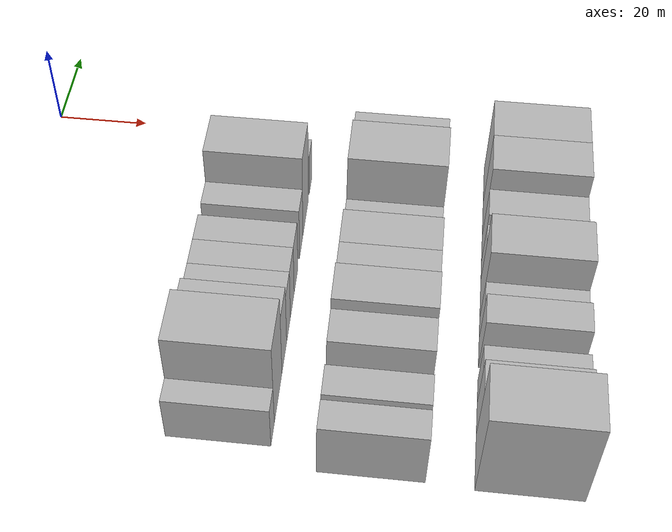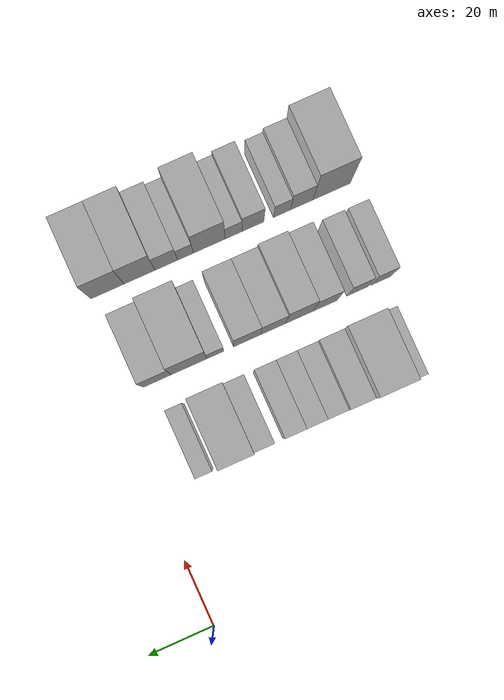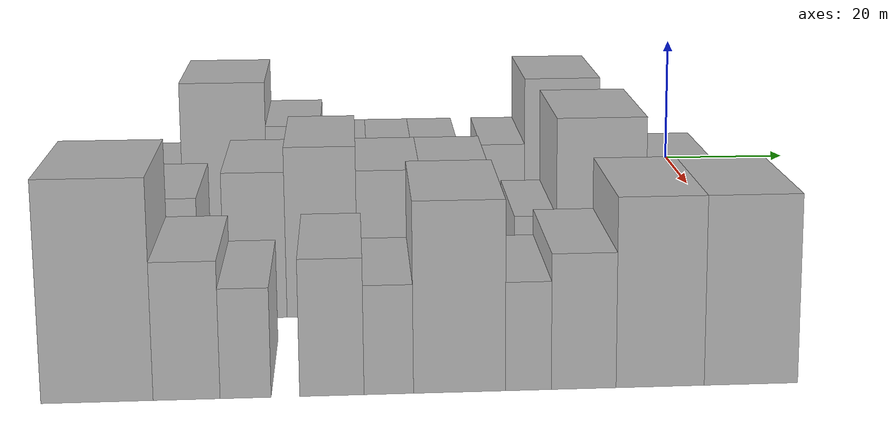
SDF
<sdf version="1.6">
 <world name="default">
  <model name="building_25">
   <static>1</static>
   <pose>50.0000 -78.8587 0 0.000000 0.000000 0.000000</pose>
   <link name="link">
    <pose>0 0 6.00 0 0 0</pose>
    <collision name="collision"><geometry><box><size>20.0000 5.0152 12.0000</size></box></geometry></collision>
    <visual name="visual">
     <cast_shadows>0</cast_shadows>
     <geometry><box><size>20.0000 5.0152 12.0000</size></box></geometry>
     <material>
      <script>
       <uri>model://HANNAS_wall/materials/scripts</uri>
       <uri>model://HANNAS_wall/materials/textures</uri>
       <name>vrc/HANNAS_wall</name>
      </script>
     </material>
    </visual>
   </link>
  </model>
  <model name="building_26">
   <static>1</static>
   <pose>50.0000 -70.6968 0 0.000000 0.000000 0.000000</pose>
   <link name="link">
    <pose>0 0 12.00 0 0 0</pose>
    <collision name="collision"><geometry><box><size>20.0000 11.3087 24.0000</size></box></geometry></collision>
    <visual name="visual">
     <cast_shadows>0</cast_shadows>
     <geometry><box><size>20.0000 11.3087 24.0000</size></box></geometry>
     <material>
      <script>
       <uri>model://HANNAS_wall/materials/scripts</uri>
       <uri>model://HANNAS_wall/materials/textures</uri>
       <name>vrc/HANNAS_wall</name>
      </script>
     </material>
    </visual>
   </link>
  </model>
  <model name="building_27">
   <static>1</static>
   <pose>50.0000 -61.3686 0 0.000000 0.000000 0.000000</pose>
   <link name="link">
    <pose>0 0 9.00 0 0 0</pose>
    <collision name="collision"><geometry><box><size>20.0000 7.3478 18.0000</size></box></geometry></collision>
    <visual name="visual">
     <cast_shadows>0</cast_shadows>
     <geometry><box><size>20.0000 7.3478 18.0000</size></box></geometry>
     <material>
      <script>
       <uri>model://HANNAS_wall/materials/scripts</uri>
       <uri>model://HANNAS_wall/materials/textures</uri>
       <name>vrc/HANNAS_wall</name>
      </script>
     </material>
    </visual>
   </link>
  </model>
  <model name="building_28">
   <static>1</static>
   <pose>50.0000 -54.6377 0 0.000000 0.000000 0.000000</pose>
   <link name="link">
    <pose>0 0 7.50 0 0 0</pose>
    <collision name="collision"><geometry><box><size>20.0000 6.1139 15.0000</size></box></geometry></collision>
    <visual name="visual">
     <cast_shadows>0</cast_shadows>
     <geometry><box><size>20.0000 6.1139 15.0000</size></box></geometry>
     <material>
      <script>
       <uri>model://HANNAS_wall/materials/scripts</uri>
       <uri>model://HANNAS_wall/materials/textures</uri>
       <name>vrc/HANNAS_wall</name>
      </script>
     </material>
    </visual>
   </link>
  </model>
  <model name="building_29">
   <static>1</static>
   <pose>50.0000 -48.5180 0 0.000000 0.000000 0.000000</pose>
   <link name="link">
    <pose>0 0 7.50 0 0 0</pose>
    <collision name="collision"><geometry><box><size>20.0000 6.1255 15.0000</size></box></geometry></collision>
    <visual name="visual">
     <cast_shadows>0</cast_shadows>
     <geometry><box><size>20.0000 6.1255 15.0000</size></box></geometry>
     <material>
      <script>
       <uri>model://HANNAS_wall/materials/scripts</uri>
       <uri>model://HANNAS_wall/materials/textures</uri>
       <name>vrc/HANNAS_wall</name>
      </script>
     </material>
    </visual>
   </link>
  </model>
  <model name="building_30">
   <static>1</static>
   <pose>50.0000 -42.2599 0 0.000000 0.000000 0.000000</pose>
   <link name="link">
    <pose>0 0 7.50 0 0 0</pose>
    <collision name="collision"><geometry><box><size>20.0000 6.3905 15.0000</size></box></geometry></collision>
    <visual name="visual">
     <cast_shadows>0</cast_shadows>
     <geometry><box><size>20.0000 6.3905 15.0000</size></box></geometry>
     <material>
      <script>
       <uri>model://HANNAS_wall/materials/scripts</uri>
       <uri>model://HANNAS_wall/materials/textures</uri>
       <name>vrc/HANNAS_wall</name>
      </script>
     </material>
    </visual>
   </link>
  </model>
  <model name="building_31">
   <static>1</static>
   <pose>50.0000 -33.0405 0 0.000000 0.000000 0.000000</pose>
   <link name="link">
    <pose>0 0 7.50 0 0 0</pose>
    <collision name="collision"><geometry><box><size>20.0000 6.0484 15.0000</size></box></geometry></collision>
    <visual name="visual">
     <cast_shadows>0</cast_shadows>
     <geometry><box><size>20.0000 6.0484 15.0000</size></box></geometry>
     <material>
      <script>
       <uri>model://HANNAS_wall/materials/scripts</uri>
       <uri>model://HANNAS_wall/materials/textures</uri>
       <name>vrc/HANNAS_wall</name>
      </script>
     </material>
    </visual>
   </link>
  </model>
  <model name="building_32">
   <static>1</static>
   <pose>50.0000 -24.8955 0 0.000000 0.000000 0.000000</pose>
   <link name="link">
    <pose>0 0 12.00 0 0 0</pose>
    <collision name="collision"><geometry><box><size>20.0000 10.2414 24.0000</size></box></geometry></collision>
    <visual name="visual">
     <cast_shadows>0</cast_shadows>
     <geometry><box><size>20.0000 10.2414 24.0000</size></box></geometry>
     <material>
      <script>
       <uri>model://HANNAS_wall/materials/scripts</uri>
       <uri>model://HANNAS_wall/materials/textures</uri>
       <name>vrc/HANNAS_wall</name>
      </script>
     </material>
    </visual>
   </link>
  </model>
  <model name="building_33">
   <static>1</static>
   <pose>50.0000 -15.2705 0 0.000000 0.000000 0.000000</pose>
   <link name="link">
    <pose>0 0 6.00 0 0 0</pose>
    <collision name="collision"><geometry><box><size>20.0000 5.0086 12.0000</size></box></geometry></collision>
    <visual name="visual">
     <cast_shadows>0</cast_shadows>
     <geometry><box><size>20.0000 5.0086 12.0000</size></box></geometry>
     <material>
      <script>
       <uri>model://HANNAS_wall/materials/scripts</uri>
       <uri>model://HANNAS_wall/materials/textures</uri>
       <name>vrc/HANNAS_wall</name>
      </script>
     </material>
    </visual>
   </link>
  </model>
  <model name="building_102">
   <static>1</static>
   <pose>79.0000 -82.6981 0 0.000000 0.000000 0.000000</pose>
   <link name="link">
    <pose>0 0 7.50 0 0 0</pose>
    <collision name="collision"><geometry><box><size>20.0000 6.1333 15.0000</size></box></geometry></collision>
    <visual name="visual">
     <cast_shadows>0</cast_shadows>
     <geometry><box><size>20.0000 6.1333 15.0000</size></box></geometry>
     <material>
      <script>
       <uri>model://HANNAS_wall/materials/scripts</uri>
       <uri>model://HANNAS_wall/materials/textures</uri>
       <name>vrc/HANNAS_wall</name>
      </script>
     </material>
    </visual>
   </link>
  </model>
  <model name="building_103">
   <static>1</static>
   <pose>79.0000 -75.3750 0 0.000000 0.000000 0.000000</pose>
   <link name="link">
    <pose>0 0 7.50 0 0 0</pose>
    <collision name="collision"><geometry><box><size>20.0000 6.5128 15.0000</size></box></geometry></collision>
    <visual name="visual">
     <cast_shadows>0</cast_shadows>
     <geometry><box><size>20.0000 6.5128 15.0000</size></box></geometry>
     <material>
      <script>
       <uri>model://HANNAS_wall/materials/scripts</uri>
       <uri>model://HANNAS_wall/materials/textures</uri>
       <name>vrc/HANNAS_wall</name>
      </script>
     </material>
    </visual>
   </link>
  </model>
  <model name="building_104">
   <static>1</static>
   <pose>79.0000 -65.3870 0 0.000000 0.000000 0.000000</pose>
   <link name="link">
    <pose>0 0 9.00 0 0 0</pose>
    <collision name="collision"><geometry><box><size>20.0000 7.4632 18.0000</size></box></geometry></collision>
    <visual name="visual">
     <cast_shadows>0</cast_shadows>
     <geometry><box><size>20.0000 7.4632 18.0000</size></box></geometry>
     <material>
      <script>
       <uri>model://HANNAS_wall/materials/scripts</uri>
       <uri>model://HANNAS_wall/materials/textures</uri>
       <name>vrc/HANNAS_wall</name>
      </script>
     </material>
    </visual>
   </link>
  </model>
  <model name="building_105">
   <static>1</static>
   <pose>79.0000 -57.3851 0 0.000000 0.000000 0.000000</pose>
   <link name="link">
    <pose>0 0 10.50 0 0 0</pose>
    <collision name="collision"><geometry><box><size>20.0000 8.5406 21.0000</size></box></geometry></collision>
    <visual name="visual">
     <cast_shadows>0</cast_shadows>
     <geometry><box><size>20.0000 8.5406 21.0000</size></box></geometry>
     <material>
      <script>
       <uri>model://HANNAS_wall/materials/scripts</uri>
       <uri>model://HANNAS_wall/materials/textures</uri>
       <name>vrc/HANNAS_wall</name>
      </script>
     </material>
    </visual>
   </link>
  </model>
  <model name="building_106">
   <static>1</static>
   <pose>79.0000 -49.2680 0 0.000000 0.000000 0.000000</pose>
   <link name="link">
    <pose>0 0 9.00 0 0 0</pose>
    <collision name="collision"><geometry><box><size>20.0000 7.6936 18.0000</size></box></geometry></collision>
    <visual name="visual">
     <cast_shadows>0</cast_shadows>
     <geometry><box><size>20.0000 7.6936 18.0000</size></box></geometry>
     <material>
      <script>
       <uri>model://HANNAS_wall/materials/scripts</uri>
       <uri>model://HANNAS_wall/materials/textures</uri>
       <name>vrc/HANNAS_wall</name>
      </script>
     </material>
    </visual>
   </link>
  </model>
  <model name="building_107">
   <static>1</static>
   <pose>79.0000 -41.2189 0 0.000000 0.000000 0.000000</pose>
   <link name="link">
    <pose>0 0 9.00 0 0 0</pose>
    <collision name="collision"><geometry><box><size>20.0000 8.4047 18.0000</size></box></geometry></collision>
    <visual name="visual">
     <cast_shadows>0</cast_shadows>
     <geometry><box><size>20.0000 8.4047 18.0000</size></box></geometry>
     <material>
      <script>
       <uri>model://HANNAS_wall/materials/scripts</uri>
       <uri>model://HANNAS_wall/materials/textures</uri>
       <name>vrc/HANNAS_wall</name>
      </script>
     </material>
    </visual>
   </link>
  </model>
  <model name="building_108">
   <static>1</static>
   <pose>79.0000 -31.4511 0 0.000000 0.000000 0.000000</pose>
   <link name="link">
    <pose>0 0 6.00 0 0 0</pose>
    <collision name="collision"><geometry><box><size>20.0000 5.1308 12.0000</size></box></geometry></collision>
    <visual name="visual">
     <cast_shadows>0</cast_shadows>
     <geometry><box><size>20.0000 5.1308 12.0000</size></box></geometry>
     <material>
      <script>
       <uri>model://HANNAS_wall/materials/scripts</uri>
       <uri>model://HANNAS_wall/materials/textures</uri>
       <name>vrc/HANNAS_wall</name>
      </script>
     </material>
    </visual>
   </link>
  </model>
  <model name="building_109">
   <static>1</static>
   <pose>79.0000 -23.4009 0 0.000000 0.000000 0.000000</pose>
   <link name="link">
    <pose>0 0 12.00 0 0 0</pose>
    <collision name="collision"><geometry><box><size>20.0000 10.9696 24.0000</size></box></geometry></collision>
    <visual name="visual">
     <cast_shadows>0</cast_shadows>
     <geometry><box><size>20.0000 10.9696 24.0000</size></box></geometry>
     <material>
      <script>
       <uri>model://HANNAS_wall/materials/scripts</uri>
       <uri>model://HANNAS_wall/materials/textures</uri>
       <name>vrc/HANNAS_wall</name>
      </script>
     </material>
    </visual>
   </link>
  </model>
  <model name="building_110">
   <static>1</static>
   <pose>79.0000 -13.5974 0 0.000000 0.000000 0.000000</pose>
   <link name="link">
    <pose>0 0 9.00 0 0 0</pose>
    <collision name="collision"><geometry><box><size>20.0000 8.6373 18.0000</size></box></geometry></collision>
    <visual name="visual">
     <cast_shadows>0</cast_shadows>
     <geometry><box><size>20.0000 8.6373 18.0000</size></box></geometry>
     <material>
      <script>
       <uri>model://HANNAS_wall/materials/scripts</uri>
       <uri>model://HANNAS_wall/materials/textures</uri>
       <name>vrc/HANNAS_wall</name>
      </script>
     </material>
    </visual>
   </link>
  </model>
  <model name="building_176">
   <static>1</static>
   <pose>108.0000 -80.5786 0 0.000000 0.000000 0.000000</pose>
   <link name="link">
    <pose>0 0 12.00 0 0 0</pose>
    <collision name="collision"><geometry><box><size>20.0000 11.6200 24.0000</size></box></geometry></collision>
    <visual name="visual">
     <cast_shadows>0</cast_shadows>
     <geometry><box><size>20.0000 11.6200 24.0000</size></box></geometry>
     <material>
      <script>
       <uri>model://HANNAS_wall/materials/scripts</uri>
       <uri>model://HANNAS_wall/materials/textures</uri>
       <name>vrc/HANNAS_wall</name>
      </script>
     </material>
    </visual>
   </link>
  </model>
  <model name="building_177">
   <static>1</static>
   <pose>108.0000 -71.2763 0 0.000000 0.000000 0.000000</pose>
   <link name="link">
    <pose>0 0 7.50 0 0 0</pose>
    <collision name="collision"><geometry><box><size>20.0000 6.9845 15.0000</size></box></geometry></collision>
    <visual name="visual">
     <cast_shadows>0</cast_shadows>
     <geometry><box><size>20.0000 6.9845 15.0000</size></box></geometry>
     <material>
      <script>
       <uri>model://HANNAS_wall/materials/scripts</uri>
       <uri>model://HANNAS_wall/materials/textures</uri>
       <name>vrc/HANNAS_wall</name>
      </script>
     </material>
    </visual>
   </link>
  </model>
  <model name="building_178">
   <static>1</static>
   <pose>108.0000 -65.1118 0 0.000000 0.000000 0.000000</pose>
   <link name="link">
    <pose>0 0 6.00 0 0 0</pose>
    <collision name="collision"><geometry><box><size>20.0000 5.3447 12.0000</size></box></geometry></collision>
    <visual name="visual">
     <cast_shadows>0</cast_shadows>
     <geometry><box><size>20.0000 5.3447 12.0000</size></box></geometry>
     <material>
      <script>
       <uri>model://HANNAS_wall/materials/scripts</uri>
       <uri>model://HANNAS_wall/materials/textures</uri>
       <name>vrc/HANNAS_wall</name>
      </script>
     </material>
    </visual>
   </link>
  </model>
  <model name="building_179">
   <static>1</static>
   <pose>108.0000 -56.0406 0 0.000000 0.000000 0.000000</pose>
   <link name="link">
    <pose>0 0 7.50 0 0 0</pose>
    <collision name="collision"><geometry><box><size>20.0000 6.7976 15.0000</size></box></geometry></collision>
    <visual name="visual">
     <cast_shadows>0</cast_shadows>
     <geometry><box><size>20.0000 6.7976 15.0000</size></box></geometry>
     <material>
      <script>
       <uri>model://HANNAS_wall/materials/scripts</uri>
       <uri>model://HANNAS_wall/materials/textures</uri>
       <name>vrc/HANNAS_wall</name>
      </script>
     </material>
    </visual>
   </link>
  </model>
  <model name="building_180">
   <static>1</static>
   <pose>108.0000 -50.0170 0 0.000000 0.000000 0.000000</pose>
   <link name="link">
    <pose>0 0 6.00 0 0 0</pose>
    <collision name="collision"><geometry><box><size>20.0000 5.2497 12.0000</size></box></geometry></collision>
    <visual name="visual">
     <cast_shadows>0</cast_shadows>
     <geometry><box><size>20.0000 5.2497 12.0000</size></box></geometry>
     <material>
      <script>
       <uri>model://HANNAS_wall/materials/scripts</uri>
       <uri>model://HANNAS_wall/materials/textures</uri>
       <name>vrc/HANNAS_wall</name>
      </script>
     </material>
    </visual>
   </link>
  </model>
  <model name="building_181">
   <static>1</static>
   <pose>108.0000 -42.4694 0 0.000000 0.000000 0.000000</pose>
   <link name="link">
    <pose>0 0 10.50 0 0 0</pose>
    <collision name="collision"><geometry><box><size>20.0000 9.8454 21.0000</size></box></geometry></collision>
    <visual name="visual">
     <cast_shadows>0</cast_shadows>
     <geometry><box><size>20.0000 9.8454 21.0000</size></box></geometry>
     <material>
      <script>
       <uri>model://HANNAS_wall/materials/scripts</uri>
       <uri>model://HANNAS_wall/materials/textures</uri>
       <name>vrc/HANNAS_wall</name>
      </script>
     </material>
    </visual>
   </link>
  </model>
  <model name="building_182">
   <static>1</static>
   <pose>108.0000 -35.0975 0 0.000000 0.000000 0.000000</pose>
   <link name="link">
    <pose>0 0 6.00 0 0 0</pose>
    <collision name="collision"><geometry><box><size>20.0000 4.8985 12.0000</size></box></geometry></collision>
    <visual name="visual">
     <cast_shadows>0</cast_shadows>
     <geometry><box><size>20.0000 4.8985 12.0000</size></box></geometry>
     <material>
      <script>
       <uri>model://HANNAS_wall/materials/scripts</uri>
       <uri>model://HANNAS_wall/materials/textures</uri>
       <name>vrc/HANNAS_wall</name>
      </script>
     </material>
    </visual>
   </link>
  </model>
  <model name="building_183">
   <static>1</static>
   <pose>108.0000 -29.1539 0 0.000000 0.000000 0.000000</pose>
   <link name="link">
    <pose>0 0 7.50 0 0 0</pose>
    <collision name="collision"><geometry><box><size>20.0000 6.9887 15.0000</size></box></geometry></collision>
    <visual name="visual">
     <cast_shadows>0</cast_shadows>
     <geometry><box><size>20.0000 6.9887 15.0000</size></box></geometry>
     <material>
      <script>
       <uri>model://HANNAS_wall/materials/scripts</uri>
       <uri>model://HANNAS_wall/materials/textures</uri>
       <name>vrc/HANNAS_wall</name>
      </script>
     </material>
    </visual>
   </link>
  </model>
  <model name="building_184">
   <static>1</static>
   <pose>108.0000 -20.8691 0 0.000000 0.000000 0.000000</pose>
   <link name="link">
    <pose>0 0 10.50 0 0 0</pose>
    <collision name="collision"><geometry><box><size>20.0000 9.5808 21.0000</size></box></geometry></collision>
    <visual name="visual">
     <cast_shadows>0</cast_shadows>
     <geometry><box><size>20.0000 9.5808 21.0000</size></box></geometry>
     <material>
      <script>
       <uri>model://HANNAS_wall/materials/scripts</uri>
       <uri>model://HANNAS_wall/materials/textures</uri>
       <name>vrc/HANNAS_wall</name>
      </script>
     </material>
    </visual>
   </link>
  </model>
  <model name="building_185">
   <static>1</static>
   <pose>108.0000 -10.9605 0 0.000000 0.000000 0.000000</pose>
   <link name="link">
    <pose>0 0 10.50 0 0 0</pose>
    <collision name="collision"><geometry><box><size>20.0000 10.2366 21.0000</size></box></geometry></collision>
    <visual name="visual">
     <cast_shadows>0</cast_shadows>
     <geometry><box><size>20.0000 10.2366 21.0000</size></box></geometry>
     <material>
      <script>
       <uri>model://HANNAS_wall/materials/scripts</uri>
       <uri>model://HANNAS_wall/materials/textures</uri>
       <name>vrc/HANNAS_wall</name>
      </script>
     </material>
    </visual>
   </link>
  </model>
 </world>
</sdf>
